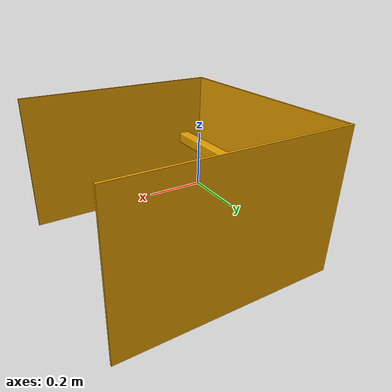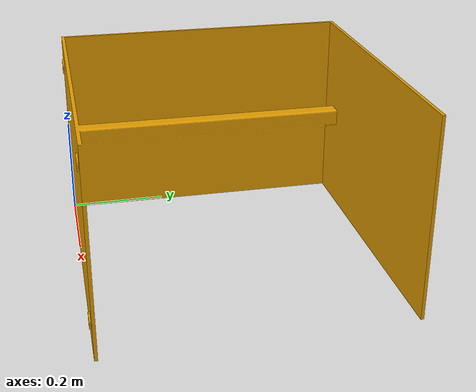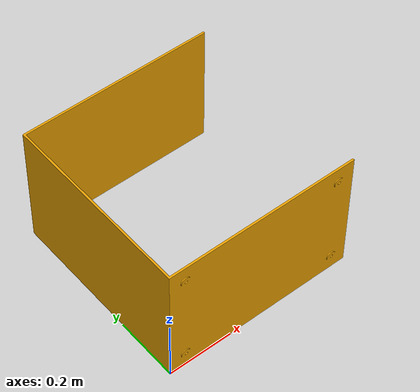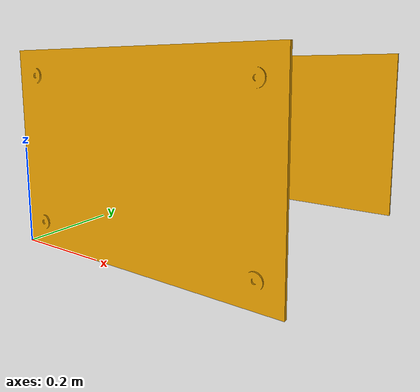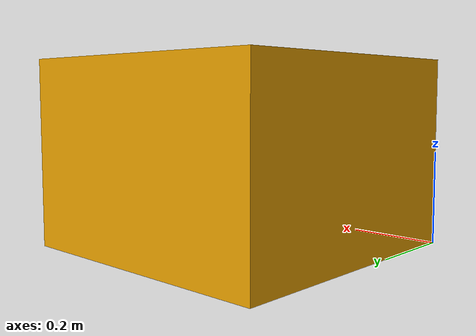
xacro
<?xml version="1.0" ?>
<robot name="frame" xmlns:xacro="http://www.ros.org/wiki/xacro">

<link name="base_link">
  <inertial>
    <origin xyz="0.18434667454160375 0.2995677116810486 0.20000000000000004" rpy="0 0 0"/>
    <mass value="5.258658040215837"/>
    <inertia ixx="0.393335" iyy="0.252305" izz="0.524098" ixy="0.000263" iyz="-0.0" ixz="0.0"/>
  </inertial>
  <visual>
    <origin xyz="0 0 0" rpy="0 0 0"/>
    <geometry>
      <mesh filename="package://calibration_fixture_description/meshes/frame.stl" scale="0.001 0.001 0.001"/>
    </geometry>
  </visual>
  <collision>
    <origin xyz="0 0 0" rpy="0 0 0"/>
    <geometry>
      <mesh filename="package://calibration_fixture_description/meshes/frame.stl" scale="0.001 0.001 0.001"/>
    </geometry>
  </collision>
</link>

</robot>
